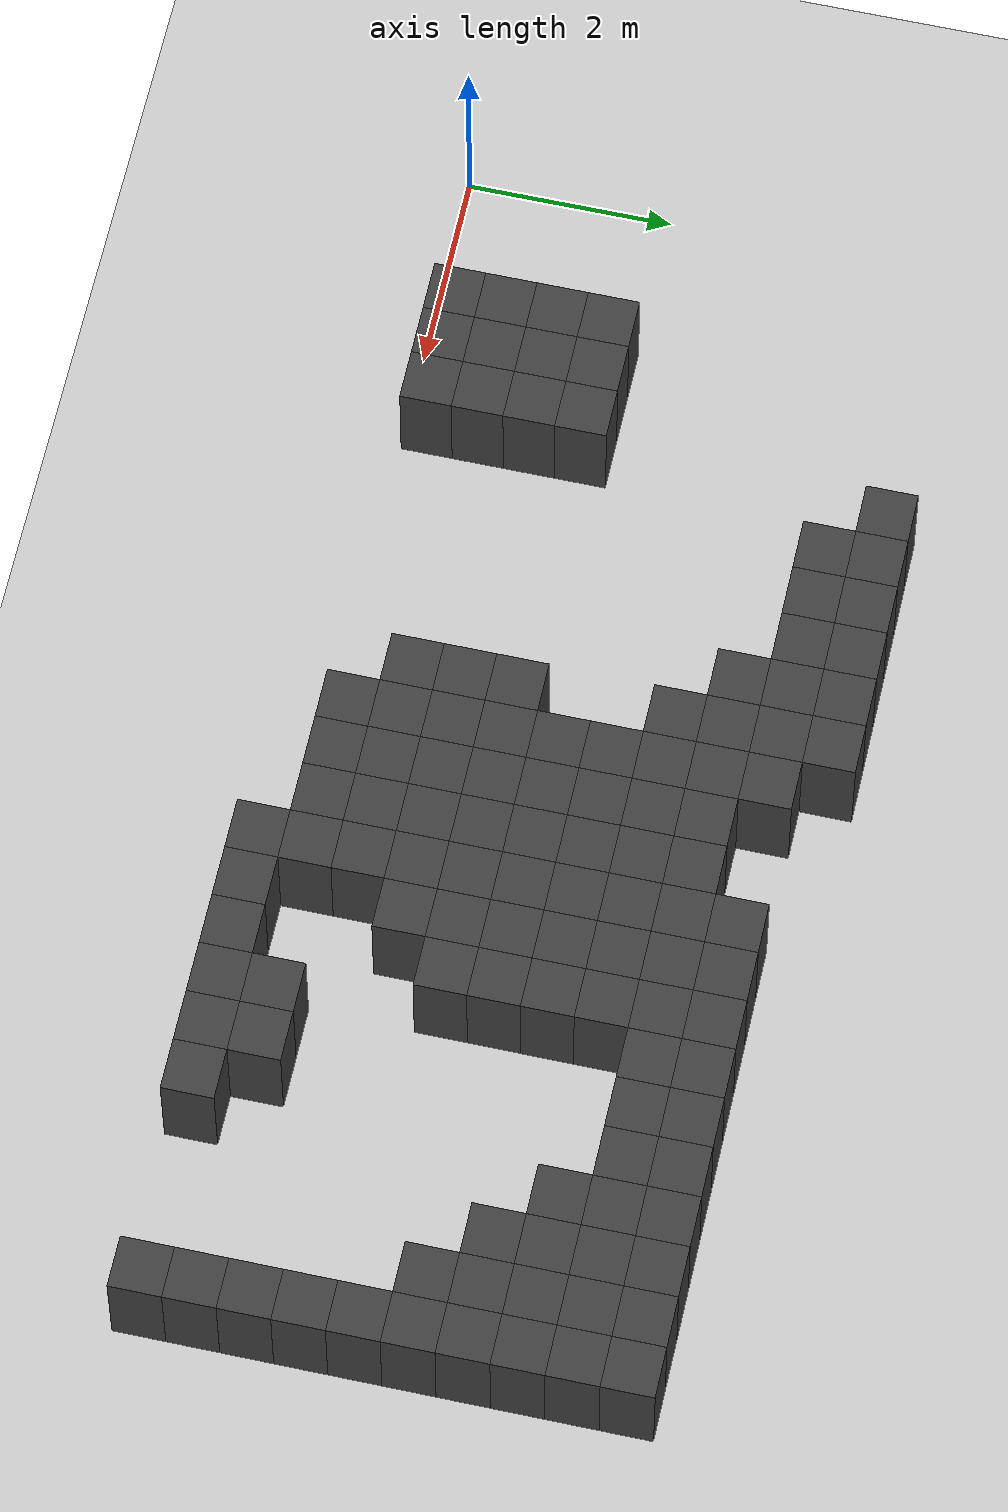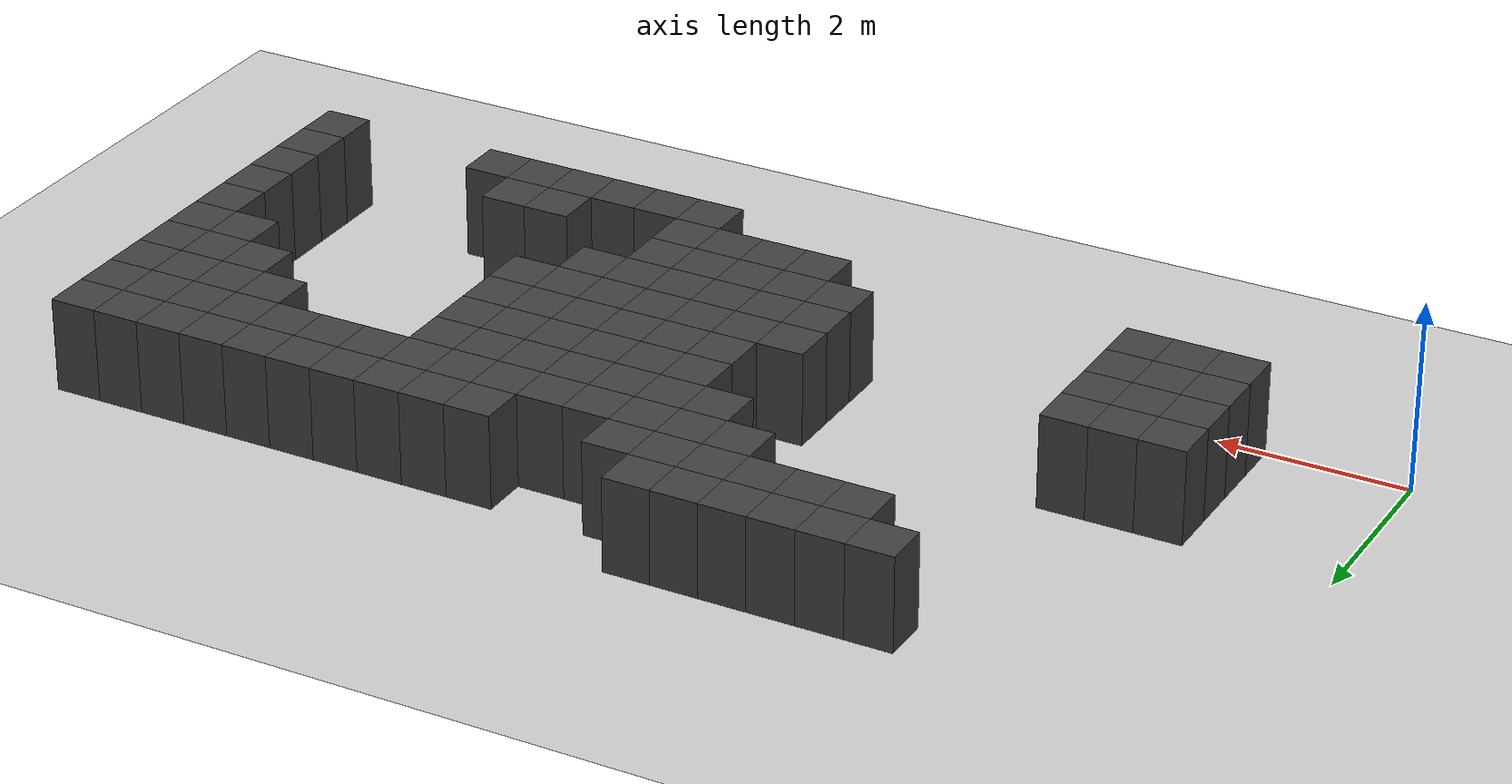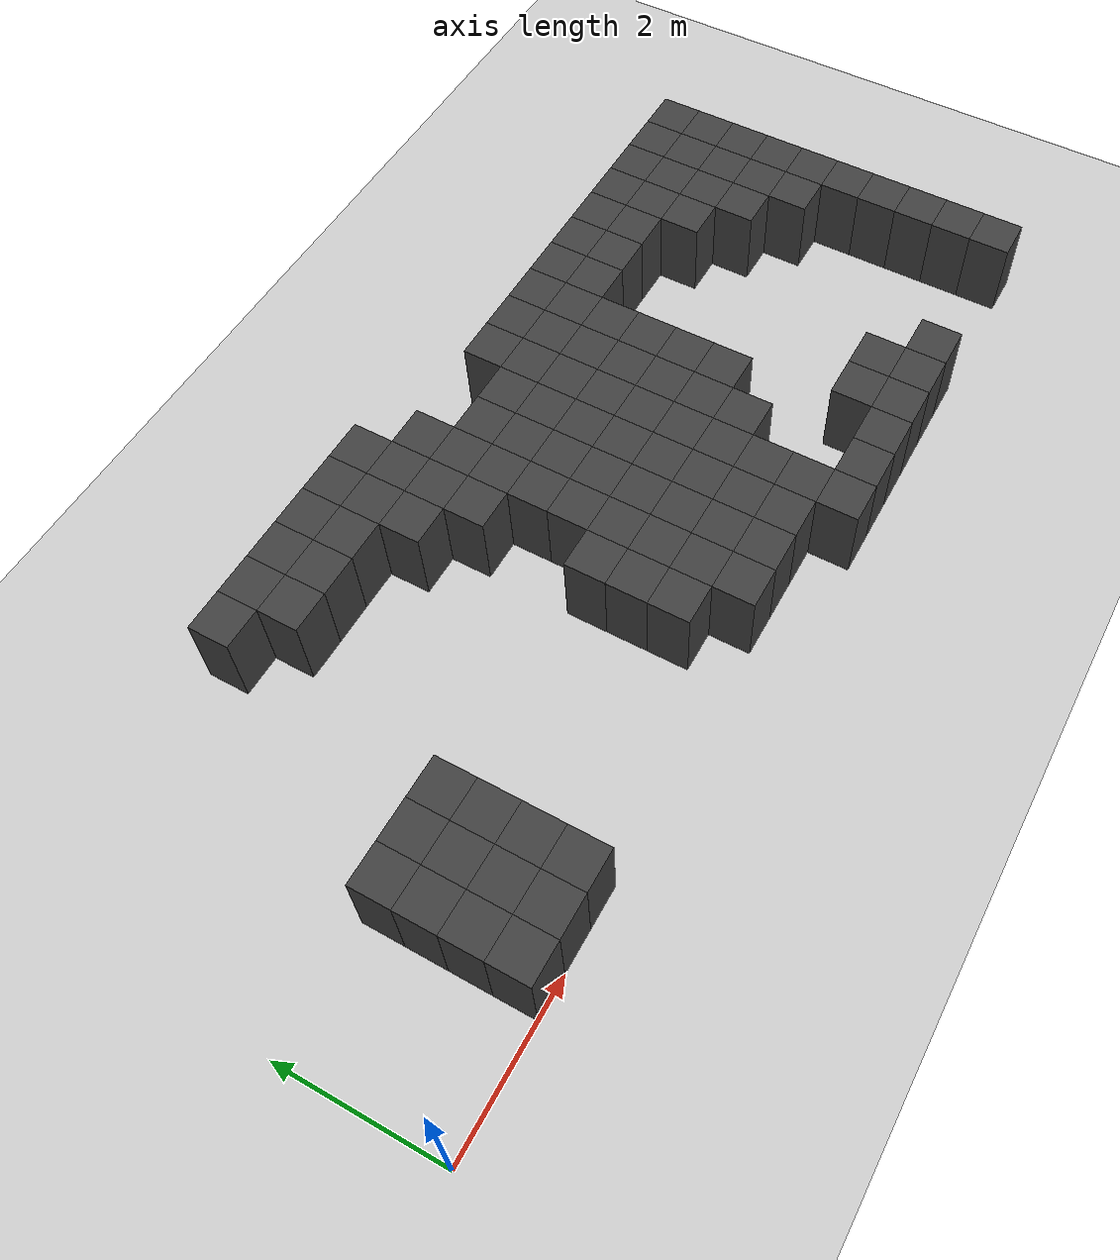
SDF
<sdf version="1.7">
 <world name="map_9405">
  <model name="ground_plane">
   <static>true</static>
   <link name="link">
    <collision name="collision">
     <geometry><plane><normal>0 0 1</normal><size>200 200</size></plane></geometry>
    </collision>
    <visual name="visual">
     <geometry><plane><normal>0 0 1</normal><size>200 200</size></plane></geometry>
     <material><ambient>0.8 0.8 0.8 1</ambient><diffuse>0.8 0.8 0.8 1</diffuse></material>
    </visual>
   </link>
  </model>
  <model name="maze_environment">
   <static>true</static>
   <link name="wall_226">
    <pose>3.250 4.750 0.500 0 0 0</pose>
    <collision name="col"><geometry><box><size>0.5 0.5 1.0</size></box></geometry></collision>
    <visual name="vis">
     <geometry><box><size>0.5 0.5 1.0</size></box></geometry>
     <material><ambient>0.15 0.15 0.15 1</ambient><diffuse>0.25 0.25 0.25 1</diffuse></material>
    </visual>
   </link>
   <link name="wall_227">
    <pose>3.750 4.750 0.500 0 0 0</pose>
    <collision name="col"><geometry><box><size>0.5 0.5 1.0</size></box></geometry></collision>
    <visual name="vis">
     <geometry><box><size>0.5 0.5 1.0</size></box></geometry>
     <material><ambient>0.15 0.15 0.15 1</ambient><diffuse>0.25 0.25 0.25 1</diffuse></material>
    </visual>
   </link>
   <link name="wall_228">
    <pose>4.250 4.750 0.500 0 0 0</pose>
    <collision name="col"><geometry><box><size>0.5 0.5 1.0</size></box></geometry></collision>
    <visual name="vis">
     <geometry><box><size>0.5 0.5 1.0</size></box></geometry>
     <material><ambient>0.15 0.15 0.15 1</ambient><diffuse>0.25 0.25 0.25 1</diffuse></material>
    </visual>
   </link>
   <link name="wall_229">
    <pose>4.750 4.750 0.500 0 0 0</pose>
    <collision name="col"><geometry><box><size>0.5 0.5 1.0</size></box></geometry></collision>
    <visual name="vis">
     <geometry><box><size>0.5 0.5 1.0</size></box></geometry>
     <material><ambient>0.15 0.15 0.15 1</ambient><diffuse>0.25 0.25 0.25 1</diffuse></material>
    </visual>
   </link>
   <link name="wall_230">
    <pose>5.250 4.750 0.500 0 0 0</pose>
    <collision name="col"><geometry><box><size>0.5 0.5 1.0</size></box></geometry></collision>
    <visual name="vis">
     <geometry><box><size>0.5 0.5 1.0</size></box></geometry>
     <material><ambient>0.15 0.15 0.15 1</ambient><diffuse>0.25 0.25 0.25 1</diffuse></material>
    </visual>
   </link>
   <link name="wall_231">
    <pose>5.750 4.750 0.500 0 0 0</pose>
    <collision name="col"><geometry><box><size>0.5 0.5 1.0</size></box></geometry></collision>
    <visual name="vis">
     <geometry><box><size>0.5 0.5 1.0</size></box></geometry>
     <material><ambient>0.15 0.15 0.15 1</ambient><diffuse>0.25 0.25 0.25 1</diffuse></material>
    </visual>
   </link>
   <link name="wall_242">
    <pose>3.750 4.250 0.500 0 0 0</pose>
    <collision name="col"><geometry><box><size>0.5 0.5 1.0</size></box></geometry></collision>
    <visual name="vis">
     <geometry><box><size>0.5 0.5 1.0</size></box></geometry>
     <material><ambient>0.15 0.15 0.15 1</ambient><diffuse>0.25 0.25 0.25 1</diffuse></material>
    </visual>
   </link>
   <link name="wall_243">
    <pose>4.250 4.250 0.500 0 0 0</pose>
    <collision name="col"><geometry><box><size>0.5 0.5 1.0</size></box></geometry></collision>
    <visual name="vis">
     <geometry><box><size>0.5 0.5 1.0</size></box></geometry>
     <material><ambient>0.15 0.15 0.15 1</ambient><diffuse>0.25 0.25 0.25 1</diffuse></material>
    </visual>
   </link>
   <link name="wall_244">
    <pose>4.750 4.250 0.500 0 0 0</pose>
    <collision name="col"><geometry><box><size>0.5 0.5 1.0</size></box></geometry></collision>
    <visual name="vis">
     <geometry><box><size>0.5 0.5 1.0</size></box></geometry>
     <material><ambient>0.15 0.15 0.15 1</ambient><diffuse>0.25 0.25 0.25 1</diffuse></material>
    </visual>
   </link>
   <link name="wall_245">
    <pose>5.250 4.250 0.500 0 0 0</pose>
    <collision name="col"><geometry><box><size>0.5 0.5 1.0</size></box></geometry></collision>
    <visual name="vis">
     <geometry><box><size>0.5 0.5 1.0</size></box></geometry>
     <material><ambient>0.15 0.15 0.15 1</ambient><diffuse>0.25 0.25 0.25 1</diffuse></material>
    </visual>
   </link>
   <link name="wall_246">
    <pose>5.750 4.250 0.500 0 0 0</pose>
    <collision name="col"><geometry><box><size>0.5 0.5 1.0</size></box></geometry></collision>
    <visual name="vis">
     <geometry><box><size>0.5 0.5 1.0</size></box></geometry>
     <material><ambient>0.15 0.15 0.15 1</ambient><diffuse>0.25 0.25 0.25 1</diffuse></material>
    </visual>
   </link>
   <link name="wall_247">
    <pose>6.250 4.250 0.500 0 0 0</pose>
    <collision name="col"><geometry><box><size>0.5 0.5 1.0</size></box></geometry></collision>
    <visual name="vis">
     <geometry><box><size>0.5 0.5 1.0</size></box></geometry>
     <material><ambient>0.15 0.15 0.15 1</ambient><diffuse>0.25 0.25 0.25 1</diffuse></material>
    </visual>
   </link>
   <link name="wall_248">
    <pose>7.750 4.250 0.500 0 0 0</pose>
    <collision name="col"><geometry><box><size>0.5 0.5 1.0</size></box></geometry></collision>
    <visual name="vis">
     <geometry><box><size>0.5 0.5 1.0</size></box></geometry>
     <material><ambient>0.15 0.15 0.15 1</ambient><diffuse>0.25 0.25 0.25 1</diffuse></material>
    </visual>
   </link>
   <link name="wall_249">
    <pose>8.250 4.250 0.500 0 0 0</pose>
    <collision name="col"><geometry><box><size>0.5 0.5 1.0</size></box></geometry></collision>
    <visual name="vis">
     <geometry><box><size>0.5 0.5 1.0</size></box></geometry>
     <material><ambient>0.15 0.15 0.15 1</ambient><diffuse>0.25 0.25 0.25 1</diffuse></material>
    </visual>
   </link>
   <link name="wall_250">
    <pose>8.750 4.250 0.500 0 0 0</pose>
    <collision name="col"><geometry><box><size>0.5 0.5 1.0</size></box></geometry></collision>
    <visual name="vis">
     <geometry><box><size>0.5 0.5 1.0</size></box></geometry>
     <material><ambient>0.15 0.15 0.15 1</ambient><diffuse>0.25 0.25 0.25 1</diffuse></material>
    </visual>
   </link>
   <link name="wall_251">
    <pose>9.250 4.250 0.500 0 0 0</pose>
    <collision name="col"><geometry><box><size>0.5 0.5 1.0</size></box></geometry></collision>
    <visual name="vis">
     <geometry><box><size>0.5 0.5 1.0</size></box></geometry>
     <material><ambient>0.15 0.15 0.15 1</ambient><diffuse>0.25 0.25 0.25 1</diffuse></material>
    </visual>
   </link>
   <link name="wall_252">
    <pose>9.750 4.250 0.500 0 0 0</pose>
    <collision name="col"><geometry><box><size>0.5 0.5 1.0</size></box></geometry></collision>
    <visual name="vis">
     <geometry><box><size>0.5 0.5 1.0</size></box></geometry>
     <material><ambient>0.15 0.15 0.15 1</ambient><diffuse>0.25 0.25 0.25 1</diffuse></material>
    </visual>
   </link>
   <link name="wall_253">
    <pose>10.250 4.250 0.500 0 0 0</pose>
    <collision name="col"><geometry><box><size>0.5 0.5 1.0</size></box></geometry></collision>
    <visual name="vis">
     <geometry><box><size>0.5 0.5 1.0</size></box></geometry>
     <material><ambient>0.15 0.15 0.15 1</ambient><diffuse>0.25 0.25 0.25 1</diffuse></material>
    </visual>
   </link>
   <link name="wall_254">
    <pose>10.750 4.250 0.500 0 0 0</pose>
    <collision name="col"><geometry><box><size>0.5 0.5 1.0</size></box></geometry></collision>
    <visual name="vis">
     <geometry><box><size>0.5 0.5 1.0</size></box></geometry>
     <material><ambient>0.15 0.15 0.15 1</ambient><diffuse>0.25 0.25 0.25 1</diffuse></material>
    </visual>
   </link>
   <link name="wall_255">
    <pose>11.250 4.250 0.500 0 0 0</pose>
    <collision name="col"><geometry><box><size>0.5 0.5 1.0</size></box></geometry></collision>
    <visual name="vis">
     <geometry><box><size>0.5 0.5 1.0</size></box></geometry>
     <material><ambient>0.15 0.15 0.15 1</ambient><diffuse>0.25 0.25 0.25 1</diffuse></material>
    </visual>
   </link>
   <link name="wall_256">
    <pose>11.750 4.250 0.500 0 0 0</pose>
    <collision name="col"><geometry><box><size>0.5 0.5 1.0</size></box></geometry></collision>
    <visual name="vis">
     <geometry><box><size>0.5 0.5 1.0</size></box></geometry>
     <material><ambient>0.15 0.15 0.15 1</ambient><diffuse>0.25 0.25 0.25 1</diffuse></material>
    </visual>
   </link>
   <link name="wall_257">
    <pose>12.250 4.250 0.500 0 0 0</pose>
    <collision name="col"><geometry><box><size>0.5 0.5 1.0</size></box></geometry></collision>
    <visual name="vis">
     <geometry><box><size>0.5 0.5 1.0</size></box></geometry>
     <material><ambient>0.15 0.15 0.15 1</ambient><diffuse>0.25 0.25 0.25 1</diffuse></material>
    </visual>
   </link>
   <link name="wall_265">
    <pose>5.250 3.750 0.500 0 0 0</pose>
    <collision name="col"><geometry><box><size>0.5 0.5 1.0</size></box></geometry></collision>
    <visual name="vis">
     <geometry><box><size>0.5 0.5 1.0</size></box></geometry>
     <material><ambient>0.15 0.15 0.15 1</ambient><diffuse>0.25 0.25 0.25 1</diffuse></material>
    </visual>
   </link>
   <link name="wall_266">
    <pose>5.750 3.750 0.500 0 0 0</pose>
    <collision name="col"><geometry><box><size>0.5 0.5 1.0</size></box></geometry></collision>
    <visual name="vis">
     <geometry><box><size>0.5 0.5 1.0</size></box></geometry>
     <material><ambient>0.15 0.15 0.15 1</ambient><diffuse>0.25 0.25 0.25 1</diffuse></material>
    </visual>
   </link>
   <link name="wall_267">
    <pose>6.250 3.750 0.500 0 0 0</pose>
    <collision name="col"><geometry><box><size>0.5 0.5 1.0</size></box></geometry></collision>
    <visual name="vis">
     <geometry><box><size>0.5 0.5 1.0</size></box></geometry>
     <material><ambient>0.15 0.15 0.15 1</ambient><diffuse>0.25 0.25 0.25 1</diffuse></material>
    </visual>
   </link>
   <link name="wall_268">
    <pose>6.750 3.750 0.500 0 0 0</pose>
    <collision name="col"><geometry><box><size>0.5 0.5 1.0</size></box></geometry></collision>
    <visual name="vis">
     <geometry><box><size>0.5 0.5 1.0</size></box></geometry>
     <material><ambient>0.15 0.15 0.15 1</ambient><diffuse>0.25 0.25 0.25 1</diffuse></material>
    </visual>
   </link>
   <link name="wall_269">
    <pose>7.250 3.750 0.500 0 0 0</pose>
    <collision name="col"><geometry><box><size>0.5 0.5 1.0</size></box></geometry></collision>
    <visual name="vis">
     <geometry><box><size>0.5 0.5 1.0</size></box></geometry>
     <material><ambient>0.15 0.15 0.15 1</ambient><diffuse>0.25 0.25 0.25 1</diffuse></material>
    </visual>
   </link>
   <link name="wall_270">
    <pose>7.750 3.750 0.500 0 0 0</pose>
    <collision name="col"><geometry><box><size>0.5 0.5 1.0</size></box></geometry></collision>
    <visual name="vis">
     <geometry><box><size>0.5 0.5 1.0</size></box></geometry>
     <material><ambient>0.15 0.15 0.15 1</ambient><diffuse>0.25 0.25 0.25 1</diffuse></material>
    </visual>
   </link>
   <link name="wall_271">
    <pose>8.250 3.750 0.500 0 0 0</pose>
    <collision name="col"><geometry><box><size>0.5 0.5 1.0</size></box></geometry></collision>
    <visual name="vis">
     <geometry><box><size>0.5 0.5 1.0</size></box></geometry>
     <material><ambient>0.15 0.15 0.15 1</ambient><diffuse>0.25 0.25 0.25 1</diffuse></material>
    </visual>
   </link>
   <link name="wall_272">
    <pose>8.750 3.750 0.500 0 0 0</pose>
    <collision name="col"><geometry><box><size>0.5 0.5 1.0</size></box></geometry></collision>
    <visual name="vis">
     <geometry><box><size>0.5 0.5 1.0</size></box></geometry>
     <material><ambient>0.15 0.15 0.15 1</ambient><diffuse>0.25 0.25 0.25 1</diffuse></material>
    </visual>
   </link>
   <link name="wall_273">
    <pose>9.250 3.750 0.500 0 0 0</pose>
    <collision name="col"><geometry><box><size>0.5 0.5 1.0</size></box></geometry></collision>
    <visual name="vis">
     <geometry><box><size>0.5 0.5 1.0</size></box></geometry>
     <material><ambient>0.15 0.15 0.15 1</ambient><diffuse>0.25 0.25 0.25 1</diffuse></material>
    </visual>
   </link>
   <link name="wall_274">
    <pose>9.750 3.750 0.500 0 0 0</pose>
    <collision name="col"><geometry><box><size>0.5 0.5 1.0</size></box></geometry></collision>
    <visual name="vis">
     <geometry><box><size>0.5 0.5 1.0</size></box></geometry>
     <material><ambient>0.15 0.15 0.15 1</ambient><diffuse>0.25 0.25 0.25 1</diffuse></material>
    </visual>
   </link>
   <link name="wall_275">
    <pose>10.250 3.750 0.500 0 0 0</pose>
    <collision name="col"><geometry><box><size>0.5 0.5 1.0</size></box></geometry></collision>
    <visual name="vis">
     <geometry><box><size>0.5 0.5 1.0</size></box></geometry>
     <material><ambient>0.15 0.15 0.15 1</ambient><diffuse>0.25 0.25 0.25 1</diffuse></material>
    </visual>
   </link>
   <link name="wall_276">
    <pose>10.750 3.750 0.500 0 0 0</pose>
    <collision name="col"><geometry><box><size>0.5 0.5 1.0</size></box></geometry></collision>
    <visual name="vis">
     <geometry><box><size>0.5 0.5 1.0</size></box></geometry>
     <material><ambient>0.15 0.15 0.15 1</ambient><diffuse>0.25 0.25 0.25 1</diffuse></material>
    </visual>
   </link>
   <link name="wall_277">
    <pose>11.250 3.750 0.500 0 0 0</pose>
    <collision name="col"><geometry><box><size>0.5 0.5 1.0</size></box></geometry></collision>
    <visual name="vis">
     <geometry><box><size>0.5 0.5 1.0</size></box></geometry>
     <material><ambient>0.15 0.15 0.15 1</ambient><diffuse>0.25 0.25 0.25 1</diffuse></material>
    </visual>
   </link>
   <link name="wall_278">
    <pose>11.750 3.750 0.500 0 0 0</pose>
    <collision name="col"><geometry><box><size>0.5 0.5 1.0</size></box></geometry></collision>
    <visual name="vis">
     <geometry><box><size>0.5 0.5 1.0</size></box></geometry>
     <material><ambient>0.15 0.15 0.15 1</ambient><diffuse>0.25 0.25 0.25 1</diffuse></material>
    </visual>
   </link>
   <link name="wall_279">
    <pose>12.250 3.750 0.500 0 0 0</pose>
    <collision name="col"><geometry><box><size>0.5 0.5 1.0</size></box></geometry></collision>
    <visual name="vis">
     <geometry><box><size>0.5 0.5 1.0</size></box></geometry>
     <material><ambient>0.15 0.15 0.15 1</ambient><diffuse>0.25 0.25 0.25 1</diffuse></material>
    </visual>
   </link>
   <link name="wall_291">
    <pose>5.750 3.250 0.500 0 0 0</pose>
    <collision name="col"><geometry><box><size>0.5 0.5 1.0</size></box></geometry></collision>
    <visual name="vis">
     <geometry><box><size>0.5 0.5 1.0</size></box></geometry>
     <material><ambient>0.15 0.15 0.15 1</ambient><diffuse>0.25 0.25 0.25 1</diffuse></material>
    </visual>
   </link>
   <link name="wall_292">
    <pose>6.250 3.250 0.500 0 0 0</pose>
    <collision name="col"><geometry><box><size>0.5 0.5 1.0</size></box></geometry></collision>
    <visual name="vis">
     <geometry><box><size>0.5 0.5 1.0</size></box></geometry>
     <material><ambient>0.15 0.15 0.15 1</ambient><diffuse>0.25 0.25 0.25 1</diffuse></material>
    </visual>
   </link>
   <link name="wall_293">
    <pose>6.750 3.250 0.500 0 0 0</pose>
    <collision name="col"><geometry><box><size>0.5 0.5 1.0</size></box></geometry></collision>
    <visual name="vis">
     <geometry><box><size>0.5 0.5 1.0</size></box></geometry>
     <material><ambient>0.15 0.15 0.15 1</ambient><diffuse>0.25 0.25 0.25 1</diffuse></material>
    </visual>
   </link>
   <link name="wall_294">
    <pose>7.250 3.250 0.500 0 0 0</pose>
    <collision name="col"><geometry><box><size>0.5 0.5 1.0</size></box></geometry></collision>
    <visual name="vis">
     <geometry><box><size>0.5 0.5 1.0</size></box></geometry>
     <material><ambient>0.15 0.15 0.15 1</ambient><diffuse>0.25 0.25 0.25 1</diffuse></material>
    </visual>
   </link>
   <link name="wall_295">
    <pose>7.750 3.250 0.500 0 0 0</pose>
    <collision name="col"><geometry><box><size>0.5 0.5 1.0</size></box></geometry></collision>
    <visual name="vis">
     <geometry><box><size>0.5 0.5 1.0</size></box></geometry>
     <material><ambient>0.15 0.15 0.15 1</ambient><diffuse>0.25 0.25 0.25 1</diffuse></material>
    </visual>
   </link>
   <link name="wall_296">
    <pose>8.250 3.250 0.500 0 0 0</pose>
    <collision name="col"><geometry><box><size>0.5 0.5 1.0</size></box></geometry></collision>
    <visual name="vis">
     <geometry><box><size>0.5 0.5 1.0</size></box></geometry>
     <material><ambient>0.15 0.15 0.15 1</ambient><diffuse>0.25 0.25 0.25 1</diffuse></material>
    </visual>
   </link>
   <link name="wall_297">
    <pose>8.750 3.250 0.500 0 0 0</pose>
    <collision name="col"><geometry><box><size>0.5 0.5 1.0</size></box></geometry></collision>
    <visual name="vis">
     <geometry><box><size>0.5 0.5 1.0</size></box></geometry>
     <material><ambient>0.15 0.15 0.15 1</ambient><diffuse>0.25 0.25 0.25 1</diffuse></material>
    </visual>
   </link>
   <link name="wall_298">
    <pose>10.750 3.250 0.500 0 0 0</pose>
    <collision name="col"><geometry><box><size>0.5 0.5 1.0</size></box></geometry></collision>
    <visual name="vis">
     <geometry><box><size>0.5 0.5 1.0</size></box></geometry>
     <material><ambient>0.15 0.15 0.15 1</ambient><diffuse>0.25 0.25 0.25 1</diffuse></material>
    </visual>
   </link>
   <link name="wall_299">
    <pose>11.250 3.250 0.500 0 0 0</pose>
    <collision name="col"><geometry><box><size>0.5 0.5 1.0</size></box></geometry></collision>
    <visual name="vis">
     <geometry><box><size>0.5 0.5 1.0</size></box></geometry>
     <material><ambient>0.15 0.15 0.15 1</ambient><diffuse>0.25 0.25 0.25 1</diffuse></material>
    </visual>
   </link>
   <link name="wall_300">
    <pose>11.750 3.250 0.500 0 0 0</pose>
    <collision name="col"><geometry><box><size>0.5 0.5 1.0</size></box></geometry></collision>
    <visual name="vis">
     <geometry><box><size>0.5 0.5 1.0</size></box></geometry>
     <material><ambient>0.15 0.15 0.15 1</ambient><diffuse>0.25 0.25 0.25 1</diffuse></material>
    </visual>
   </link>
   <link name="wall_301">
    <pose>12.250 3.250 0.500 0 0 0</pose>
    <collision name="col"><geometry><box><size>0.5 0.5 1.0</size></box></geometry></collision>
    <visual name="vis">
     <geometry><box><size>0.5 0.5 1.0</size></box></geometry>
     <material><ambient>0.15 0.15 0.15 1</ambient><diffuse>0.25 0.25 0.25 1</diffuse></material>
    </visual>
   </link>
   <link name="wall_314">
    <pose>6.250 2.750 0.500 0 0 0</pose>
    <collision name="col"><geometry><box><size>0.5 0.5 1.0</size></box></geometry></collision>
    <visual name="vis">
     <geometry><box><size>0.5 0.5 1.0</size></box></geometry>
     <material><ambient>0.15 0.15 0.15 1</ambient><diffuse>0.25 0.25 0.25 1</diffuse></material>
    </visual>
   </link>
   <link name="wall_315">
    <pose>6.750 2.750 0.500 0 0 0</pose>
    <collision name="col"><geometry><box><size>0.5 0.5 1.0</size></box></geometry></collision>
    <visual name="vis">
     <geometry><box><size>0.5 0.5 1.0</size></box></geometry>
     <material><ambient>0.15 0.15 0.15 1</ambient><diffuse>0.25 0.25 0.25 1</diffuse></material>
    </visual>
   </link>
   <link name="wall_316">
    <pose>7.250 2.750 0.500 0 0 0</pose>
    <collision name="col"><geometry><box><size>0.5 0.5 1.0</size></box></geometry></collision>
    <visual name="vis">
     <geometry><box><size>0.5 0.5 1.0</size></box></geometry>
     <material><ambient>0.15 0.15 0.15 1</ambient><diffuse>0.25 0.25 0.25 1</diffuse></material>
    </visual>
   </link>
   <link name="wall_317">
    <pose>7.750 2.750 0.500 0 0 0</pose>
    <collision name="col"><geometry><box><size>0.5 0.5 1.0</size></box></geometry></collision>
    <visual name="vis">
     <geometry><box><size>0.5 0.5 1.0</size></box></geometry>
     <material><ambient>0.15 0.15 0.15 1</ambient><diffuse>0.25 0.25 0.25 1</diffuse></material>
    </visual>
   </link>
   <link name="wall_318">
    <pose>8.250 2.750 0.500 0 0 0</pose>
    <collision name="col"><geometry><box><size>0.5 0.5 1.0</size></box></geometry></collision>
    <visual name="vis">
     <geometry><box><size>0.5 0.5 1.0</size></box></geometry>
     <material><ambient>0.15 0.15 0.15 1</ambient><diffuse>0.25 0.25 0.25 1</diffuse></material>
    </visual>
   </link>
   <link name="wall_319">
    <pose>8.750 2.750 0.500 0 0 0</pose>
    <collision name="col"><geometry><box><size>0.5 0.5 1.0</size></box></geometry></collision>
    <visual name="vis">
     <geometry><box><size>0.5 0.5 1.0</size></box></geometry>
     <material><ambient>0.15 0.15 0.15 1</ambient><diffuse>0.25 0.25 0.25 1</diffuse></material>
    </visual>
   </link>
   <link name="wall_320">
    <pose>11.250 2.750 0.500 0 0 0</pose>
    <collision name="col"><geometry><box><size>0.5 0.5 1.0</size></box></geometry></collision>
    <visual name="vis">
     <geometry><box><size>0.5 0.5 1.0</size></box></geometry>
     <material><ambient>0.15 0.15 0.15 1</ambient><diffuse>0.25 0.25 0.25 1</diffuse></material>
    </visual>
   </link>
   <link name="wall_321">
    <pose>11.750 2.750 0.500 0 0 0</pose>
    <collision name="col"><geometry><box><size>0.5 0.5 1.0</size></box></geometry></collision>
    <visual name="vis">
     <geometry><box><size>0.5 0.5 1.0</size></box></geometry>
     <material><ambient>0.15 0.15 0.15 1</ambient><diffuse>0.25 0.25 0.25 1</diffuse></material>
    </visual>
   </link>
   <link name="wall_322">
    <pose>12.250 2.750 0.500 0 0 0</pose>
    <collision name="col"><geometry><box><size>0.5 0.5 1.0</size></box></geometry></collision>
    <visual name="vis">
     <geometry><box><size>0.5 0.5 1.0</size></box></geometry>
     <material><ambient>0.15 0.15 0.15 1</ambient><diffuse>0.25 0.25 0.25 1</diffuse></material>
    </visual>
   </link>
   <link name="wall_335">
    <pose>6.250 2.250 0.500 0 0 0</pose>
    <collision name="col"><geometry><box><size>0.5 0.5 1.0</size></box></geometry></collision>
    <visual name="vis">
     <geometry><box><size>0.5 0.5 1.0</size></box></geometry>
     <material><ambient>0.15 0.15 0.15 1</ambient><diffuse>0.25 0.25 0.25 1</diffuse></material>
    </visual>
   </link>
   <link name="wall_336">
    <pose>6.750 2.250 0.500 0 0 0</pose>
    <collision name="col"><geometry><box><size>0.5 0.5 1.0</size></box></geometry></collision>
    <visual name="vis">
     <geometry><box><size>0.5 0.5 1.0</size></box></geometry>
     <material><ambient>0.15 0.15 0.15 1</ambient><diffuse>0.25 0.25 0.25 1</diffuse></material>
    </visual>
   </link>
   <link name="wall_337">
    <pose>7.250 2.250 0.500 0 0 0</pose>
    <collision name="col"><geometry><box><size>0.5 0.5 1.0</size></box></geometry></collision>
    <visual name="vis">
     <geometry><box><size>0.5 0.5 1.0</size></box></geometry>
     <material><ambient>0.15 0.15 0.15 1</ambient><diffuse>0.25 0.25 0.25 1</diffuse></material>
    </visual>
   </link>
   <link name="wall_338">
    <pose>7.750 2.250 0.500 0 0 0</pose>
    <collision name="col"><geometry><box><size>0.5 0.5 1.0</size></box></geometry></collision>
    <visual name="vis">
     <geometry><box><size>0.5 0.5 1.0</size></box></geometry>
     <material><ambient>0.15 0.15 0.15 1</ambient><diffuse>0.25 0.25 0.25 1</diffuse></material>
    </visual>
   </link>
   <link name="wall_339">
    <pose>8.250 2.250 0.500 0 0 0</pose>
    <collision name="col"><geometry><box><size>0.5 0.5 1.0</size></box></geometry></collision>
    <visual name="vis">
     <geometry><box><size>0.5 0.5 1.0</size></box></geometry>
     <material><ambient>0.15 0.15 0.15 1</ambient><diffuse>0.25 0.25 0.25 1</diffuse></material>
    </visual>
   </link>
   <link name="wall_340">
    <pose>8.750 2.250 0.500 0 0 0</pose>
    <collision name="col"><geometry><box><size>0.5 0.5 1.0</size></box></geometry></collision>
    <visual name="vis">
     <geometry><box><size>0.5 0.5 1.0</size></box></geometry>
     <material><ambient>0.15 0.15 0.15 1</ambient><diffuse>0.25 0.25 0.25 1</diffuse></material>
    </visual>
   </link>
   <link name="wall_341">
    <pose>11.750 2.250 0.500 0 0 0</pose>
    <collision name="col"><geometry><box><size>0.5 0.5 1.0</size></box></geometry></collision>
    <visual name="vis">
     <geometry><box><size>0.5 0.5 1.0</size></box></geometry>
     <material><ambient>0.15 0.15 0.15 1</ambient><diffuse>0.25 0.25 0.25 1</diffuse></material>
    </visual>
   </link>
   <link name="wall_342">
    <pose>12.250 2.250 0.500 0 0 0</pose>
    <collision name="col"><geometry><box><size>0.5 0.5 1.0</size></box></geometry></collision>
    <visual name="vis">
     <geometry><box><size>0.5 0.5 1.0</size></box></geometry>
     <material><ambient>0.15 0.15 0.15 1</ambient><diffuse>0.25 0.25 0.25 1</diffuse></material>
    </visual>
   </link>
   <link name="wall_353">
    <pose>1.750 1.750 0.500 0 0 0</pose>
    <collision name="col"><geometry><box><size>0.5 0.5 1.0</size></box></geometry></collision>
    <visual name="vis">
     <geometry><box><size>0.5 0.5 1.0</size></box></geometry>
     <material><ambient>0.15 0.15 0.15 1</ambient><diffuse>0.25 0.25 0.25 1</diffuse></material>
    </visual>
   </link>
   <link name="wall_354">
    <pose>2.250 1.750 0.500 0 0 0</pose>
    <collision name="col"><geometry><box><size>0.5 0.5 1.0</size></box></geometry></collision>
    <visual name="vis">
     <geometry><box><size>0.5 0.5 1.0</size></box></geometry>
     <material><ambient>0.15 0.15 0.15 1</ambient><diffuse>0.25 0.25 0.25 1</diffuse></material>
    </visual>
   </link>
   <link name="wall_355">
    <pose>2.750 1.750 0.500 0 0 0</pose>
    <collision name="col"><geometry><box><size>0.5 0.5 1.0</size></box></geometry></collision>
    <visual name="vis">
     <geometry><box><size>0.5 0.5 1.0</size></box></geometry>
     <material><ambient>0.15 0.15 0.15 1</ambient><diffuse>0.25 0.25 0.25 1</diffuse></material>
    </visual>
   </link>
   <link name="wall_356">
    <pose>5.750 1.750 0.500 0 0 0</pose>
    <collision name="col"><geometry><box><size>0.5 0.5 1.0</size></box></geometry></collision>
    <visual name="vis">
     <geometry><box><size>0.5 0.5 1.0</size></box></geometry>
     <material><ambient>0.15 0.15 0.15 1</ambient><diffuse>0.25 0.25 0.25 1</diffuse></material>
    </visual>
   </link>
   <link name="wall_357">
    <pose>6.250 1.750 0.500 0 0 0</pose>
    <collision name="col"><geometry><box><size>0.5 0.5 1.0</size></box></geometry></collision>
    <visual name="vis">
     <geometry><box><size>0.5 0.5 1.0</size></box></geometry>
     <material><ambient>0.15 0.15 0.15 1</ambient><diffuse>0.25 0.25 0.25 1</diffuse></material>
    </visual>
   </link>
   <link name="wall_358">
    <pose>6.750 1.750 0.500 0 0 0</pose>
    <collision name="col"><geometry><box><size>0.5 0.5 1.0</size></box></geometry></collision>
    <visual name="vis">
     <geometry><box><size>0.5 0.5 1.0</size></box></geometry>
     <material><ambient>0.15 0.15 0.15 1</ambient><diffuse>0.25 0.25 0.25 1</diffuse></material>
    </visual>
   </link>
   <link name="wall_359">
    <pose>7.250 1.750 0.500 0 0 0</pose>
    <collision name="col"><geometry><box><size>0.5 0.5 1.0</size></box></geometry></collision>
    <visual name="vis">
     <geometry><box><size>0.5 0.5 1.0</size></box></geometry>
     <material><ambient>0.15 0.15 0.15 1</ambient><diffuse>0.25 0.25 0.25 1</diffuse></material>
    </visual>
   </link>
   <link name="wall_360">
    <pose>7.750 1.750 0.500 0 0 0</pose>
    <collision name="col"><geometry><box><size>0.5 0.5 1.0</size></box></geometry></collision>
    <visual name="vis">
     <geometry><box><size>0.5 0.5 1.0</size></box></geometry>
     <material><ambient>0.15 0.15 0.15 1</ambient><diffuse>0.25 0.25 0.25 1</diffuse></material>
    </visual>
   </link>
   <link name="wall_361">
    <pose>8.250 1.750 0.500 0 0 0</pose>
    <collision name="col"><geometry><box><size>0.5 0.5 1.0</size></box></geometry></collision>
    <visual name="vis">
     <geometry><box><size>0.5 0.5 1.0</size></box></geometry>
     <material><ambient>0.15 0.15 0.15 1</ambient><diffuse>0.25 0.25 0.25 1</diffuse></material>
    </visual>
   </link>
   <link name="wall_362">
    <pose>8.750 1.750 0.500 0 0 0</pose>
    <collision name="col"><geometry><box><size>0.5 0.5 1.0</size></box></geometry></collision>
    <visual name="vis">
     <geometry><box><size>0.5 0.5 1.0</size></box></geometry>
     <material><ambient>0.15 0.15 0.15 1</ambient><diffuse>0.25 0.25 0.25 1</diffuse></material>
    </visual>
   </link>
   <link name="wall_363">
    <pose>12.250 1.750 0.500 0 0 0</pose>
    <collision name="col"><geometry><box><size>0.5 0.5 1.0</size></box></geometry></collision>
    <visual name="vis">
     <geometry><box><size>0.5 0.5 1.0</size></box></geometry>
     <material><ambient>0.15 0.15 0.15 1</ambient><diffuse>0.25 0.25 0.25 1</diffuse></material>
    </visual>
   </link>
   <link name="wall_375">
    <pose>1.750 1.250 0.500 0 0 0</pose>
    <collision name="col"><geometry><box><size>0.5 0.5 1.0</size></box></geometry></collision>
    <visual name="vis">
     <geometry><box><size>0.5 0.5 1.0</size></box></geometry>
     <material><ambient>0.15 0.15 0.15 1</ambient><diffuse>0.25 0.25 0.25 1</diffuse></material>
    </visual>
   </link>
   <link name="wall_376">
    <pose>2.250 1.250 0.500 0 0 0</pose>
    <collision name="col"><geometry><box><size>0.5 0.5 1.0</size></box></geometry></collision>
    <visual name="vis">
     <geometry><box><size>0.5 0.5 1.0</size></box></geometry>
     <material><ambient>0.15 0.15 0.15 1</ambient><diffuse>0.25 0.25 0.25 1</diffuse></material>
    </visual>
   </link>
   <link name="wall_377">
    <pose>2.750 1.250 0.500 0 0 0</pose>
    <collision name="col"><geometry><box><size>0.5 0.5 1.0</size></box></geometry></collision>
    <visual name="vis">
     <geometry><box><size>0.5 0.5 1.0</size></box></geometry>
     <material><ambient>0.15 0.15 0.15 1</ambient><diffuse>0.25 0.25 0.25 1</diffuse></material>
    </visual>
   </link>
   <link name="wall_378">
    <pose>5.750 1.250 0.500 0 0 0</pose>
    <collision name="col"><geometry><box><size>0.5 0.5 1.0</size></box></geometry></collision>
    <visual name="vis">
     <geometry><box><size>0.5 0.5 1.0</size></box></geometry>
     <material><ambient>0.15 0.15 0.15 1</ambient><diffuse>0.25 0.25 0.25 1</diffuse></material>
    </visual>
   </link>
   <link name="wall_379">
    <pose>6.250 1.250 0.500 0 0 0</pose>
    <collision name="col"><geometry><box><size>0.5 0.5 1.0</size></box></geometry></collision>
    <visual name="vis">
     <geometry><box><size>0.5 0.5 1.0</size></box></geometry>
     <material><ambient>0.15 0.15 0.15 1</ambient><diffuse>0.25 0.25 0.25 1</diffuse></material>
    </visual>
   </link>
   <link name="wall_380">
    <pose>6.750 1.250 0.500 0 0 0</pose>
    <collision name="col"><geometry><box><size>0.5 0.5 1.0</size></box></geometry></collision>
    <visual name="vis">
     <geometry><box><size>0.5 0.5 1.0</size></box></geometry>
     <material><ambient>0.15 0.15 0.15 1</ambient><diffuse>0.25 0.25 0.25 1</diffuse></material>
    </visual>
   </link>
   <link name="wall_381">
    <pose>7.250 1.250 0.500 0 0 0</pose>
    <collision name="col"><geometry><box><size>0.5 0.5 1.0</size></box></geometry></collision>
    <visual name="vis">
     <geometry><box><size>0.5 0.5 1.0</size></box></geometry>
     <material><ambient>0.15 0.15 0.15 1</ambient><diffuse>0.25 0.25 0.25 1</diffuse></material>
    </visual>
   </link>
   <link name="wall_382">
    <pose>7.750 1.250 0.500 0 0 0</pose>
    <collision name="col"><geometry><box><size>0.5 0.5 1.0</size></box></geometry></collision>
    <visual name="vis">
     <geometry><box><size>0.5 0.5 1.0</size></box></geometry>
     <material><ambient>0.15 0.15 0.15 1</ambient><diffuse>0.25 0.25 0.25 1</diffuse></material>
    </visual>
   </link>
   <link name="wall_383">
    <pose>8.250 1.250 0.500 0 0 0</pose>
    <collision name="col"><geometry><box><size>0.5 0.5 1.0</size></box></geometry></collision>
    <visual name="vis">
     <geometry><box><size>0.5 0.5 1.0</size></box></geometry>
     <material><ambient>0.15 0.15 0.15 1</ambient><diffuse>0.25 0.25 0.25 1</diffuse></material>
    </visual>
   </link>
   <link name="wall_384">
    <pose>12.250 1.250 0.500 0 0 0</pose>
    <collision name="col"><geometry><box><size>0.5 0.5 1.0</size></box></geometry></collision>
    <visual name="vis">
     <geometry><box><size>0.5 0.5 1.0</size></box></geometry>
     <material><ambient>0.15 0.15 0.15 1</ambient><diffuse>0.25 0.25 0.25 1</diffuse></material>
    </visual>
   </link>
   <link name="wall_396">
    <pose>1.750 0.750 0.500 0 0 0</pose>
    <collision name="col"><geometry><box><size>0.5 0.5 1.0</size></box></geometry></collision>
    <visual name="vis">
     <geometry><box><size>0.5 0.5 1.0</size></box></geometry>
     <material><ambient>0.15 0.15 0.15 1</ambient><diffuse>0.25 0.25 0.25 1</diffuse></material>
    </visual>
   </link>
   <link name="wall_397">
    <pose>2.250 0.750 0.500 0 0 0</pose>
    <collision name="col"><geometry><box><size>0.5 0.5 1.0</size></box></geometry></collision>
    <visual name="vis">
     <geometry><box><size>0.5 0.5 1.0</size></box></geometry>
     <material><ambient>0.15 0.15 0.15 1</ambient><diffuse>0.25 0.25 0.25 1</diffuse></material>
    </visual>
   </link>
   <link name="wall_398">
    <pose>2.750 0.750 0.500 0 0 0</pose>
    <collision name="col"><geometry><box><size>0.5 0.5 1.0</size></box></geometry></collision>
    <visual name="vis">
     <geometry><box><size>0.5 0.5 1.0</size></box></geometry>
     <material><ambient>0.15 0.15 0.15 1</ambient><diffuse>0.25 0.25 0.25 1</diffuse></material>
    </visual>
   </link>
   <link name="wall_399">
    <pose>5.750 0.750 0.500 0 0 0</pose>
    <collision name="col"><geometry><box><size>0.5 0.5 1.0</size></box></geometry></collision>
    <visual name="vis">
     <geometry><box><size>0.5 0.5 1.0</size></box></geometry>
     <material><ambient>0.15 0.15 0.15 1</ambient><diffuse>0.25 0.25 0.25 1</diffuse></material>
    </visual>
   </link>
   <link name="wall_400">
    <pose>6.250 0.750 0.500 0 0 0</pose>
    <collision name="col"><geometry><box><size>0.5 0.5 1.0</size></box></geometry></collision>
    <visual name="vis">
     <geometry><box><size>0.5 0.5 1.0</size></box></geometry>
     <material><ambient>0.15 0.15 0.15 1</ambient><diffuse>0.25 0.25 0.25 1</diffuse></material>
    </visual>
   </link>
   <link name="wall_401">
    <pose>6.750 0.750 0.500 0 0 0</pose>
    <collision name="col"><geometry><box><size>0.5 0.5 1.0</size></box></geometry></collision>
    <visual name="vis">
     <geometry><box><size>0.5 0.5 1.0</size></box></geometry>
     <material><ambient>0.15 0.15 0.15 1</ambient><diffuse>0.25 0.25 0.25 1</diffuse></material>
    </visual>
   </link>
   <link name="wall_402">
    <pose>7.250 0.750 0.500 0 0 0</pose>
    <collision name="col"><geometry><box><size>0.5 0.5 1.0</size></box></geometry></collision>
    <visual name="vis">
     <geometry><box><size>0.5 0.5 1.0</size></box></geometry>
     <material><ambient>0.15 0.15 0.15 1</ambient><diffuse>0.25 0.25 0.25 1</diffuse></material>
    </visual>
   </link>
   <link name="wall_403">
    <pose>7.750 0.750 0.500 0 0 0</pose>
    <collision name="col"><geometry><box><size>0.5 0.5 1.0</size></box></geometry></collision>
    <visual name="vis">
     <geometry><box><size>0.5 0.5 1.0</size></box></geometry>
     <material><ambient>0.15 0.15 0.15 1</ambient><diffuse>0.25 0.25 0.25 1</diffuse></material>
    </visual>
   </link>
   <link name="wall_404">
    <pose>12.250 0.750 0.500 0 0 0</pose>
    <collision name="col"><geometry><box><size>0.5 0.5 1.0</size></box></geometry></collision>
    <visual name="vis">
     <geometry><box><size>0.5 0.5 1.0</size></box></geometry>
     <material><ambient>0.15 0.15 0.15 1</ambient><diffuse>0.25 0.25 0.25 1</diffuse></material>
    </visual>
   </link>
   <link name="wall_416">
    <pose>1.750 0.250 0.500 0 0 0</pose>
    <collision name="col"><geometry><box><size>0.5 0.5 1.0</size></box></geometry></collision>
    <visual name="vis">
     <geometry><box><size>0.5 0.5 1.0</size></box></geometry>
     <material><ambient>0.15 0.15 0.15 1</ambient><diffuse>0.25 0.25 0.25 1</diffuse></material>
    </visual>
   </link>
   <link name="wall_417">
    <pose>2.250 0.250 0.500 0 0 0</pose>
    <collision name="col"><geometry><box><size>0.5 0.5 1.0</size></box></geometry></collision>
    <visual name="vis">
     <geometry><box><size>0.5 0.5 1.0</size></box></geometry>
     <material><ambient>0.15 0.15 0.15 1</ambient><diffuse>0.25 0.25 0.25 1</diffuse></material>
    </visual>
   </link>
   <link name="wall_418">
    <pose>2.750 0.250 0.500 0 0 0</pose>
    <collision name="col"><geometry><box><size>0.5 0.5 1.0</size></box></geometry></collision>
    <visual name="vis">
     <geometry><box><size>0.5 0.5 1.0</size></box></geometry>
     <material><ambient>0.15 0.15 0.15 1</ambient><diffuse>0.25 0.25 0.25 1</diffuse></material>
    </visual>
   </link>
   <link name="wall_419">
    <pose>6.250 0.250 0.500 0 0 0</pose>
    <collision name="col"><geometry><box><size>0.5 0.5 1.0</size></box></geometry></collision>
    <visual name="vis">
     <geometry><box><size>0.5 0.5 1.0</size></box></geometry>
     <material><ambient>0.15 0.15 0.15 1</ambient><diffuse>0.25 0.25 0.25 1</diffuse></material>
    </visual>
   </link>
   <link name="wall_420">
    <pose>6.750 0.250 0.500 0 0 0</pose>
    <collision name="col"><geometry><box><size>0.5 0.5 1.0</size></box></geometry></collision>
    <visual name="vis">
     <geometry><box><size>0.5 0.5 1.0</size></box></geometry>
     <material><ambient>0.15 0.15 0.15 1</ambient><diffuse>0.25 0.25 0.25 1</diffuse></material>
    </visual>
   </link>
   <link name="wall_421">
    <pose>7.250 0.250 0.500 0 0 0</pose>
    <collision name="col"><geometry><box><size>0.5 0.5 1.0</size></box></geometry></collision>
    <visual name="vis">
     <geometry><box><size>0.5 0.5 1.0</size></box></geometry>
     <material><ambient>0.15 0.15 0.15 1</ambient><diffuse>0.25 0.25 0.25 1</diffuse></material>
    </visual>
   </link>
   <link name="wall_422">
    <pose>7.750 0.250 0.500 0 0 0</pose>
    <collision name="col"><geometry><box><size>0.5 0.5 1.0</size></box></geometry></collision>
    <visual name="vis">
     <geometry><box><size>0.5 0.5 1.0</size></box></geometry>
     <material><ambient>0.15 0.15 0.15 1</ambient><diffuse>0.25 0.25 0.25 1</diffuse></material>
    </visual>
   </link>
   <link name="wall_423">
    <pose>9.250 0.250 0.500 0 0 0</pose>
    <collision name="col"><geometry><box><size>0.5 0.5 1.0</size></box></geometry></collision>
    <visual name="vis">
     <geometry><box><size>0.5 0.5 1.0</size></box></geometry>
     <material><ambient>0.15 0.15 0.15 1</ambient><diffuse>0.25 0.25 0.25 1</diffuse></material>
    </visual>
   </link>
   <link name="wall_424">
    <pose>9.750 0.250 0.500 0 0 0</pose>
    <collision name="col"><geometry><box><size>0.5 0.5 1.0</size></box></geometry></collision>
    <visual name="vis">
     <geometry><box><size>0.5 0.5 1.0</size></box></geometry>
     <material><ambient>0.15 0.15 0.15 1</ambient><diffuse>0.25 0.25 0.25 1</diffuse></material>
    </visual>
   </link>
   <link name="wall_425">
    <pose>12.250 0.250 0.500 0 0 0</pose>
    <collision name="col"><geometry><box><size>0.5 0.5 1.0</size></box></geometry></collision>
    <visual name="vis">
     <geometry><box><size>0.5 0.5 1.0</size></box></geometry>
     <material><ambient>0.15 0.15 0.15 1</ambient><diffuse>0.25 0.25 0.25 1</diffuse></material>
    </visual>
   </link>
   <link name="wall_442">
    <pose>7.750 -0.250 0.500 0 0 0</pose>
    <collision name="col"><geometry><box><size>0.5 0.5 1.0</size></box></geometry></collision>
    <visual name="vis">
     <geometry><box><size>0.5 0.5 1.0</size></box></geometry>
     <material><ambient>0.15 0.15 0.15 1</ambient><diffuse>0.25 0.25 0.25 1</diffuse></material>
    </visual>
   </link>
   <link name="wall_443">
    <pose>8.250 -0.250 0.500 0 0 0</pose>
    <collision name="col"><geometry><box><size>0.5 0.5 1.0</size></box></geometry></collision>
    <visual name="vis">
     <geometry><box><size>0.5 0.5 1.0</size></box></geometry>
     <material><ambient>0.15 0.15 0.15 1</ambient><diffuse>0.25 0.25 0.25 1</diffuse></material>
    </visual>
   </link>
   <link name="wall_444">
    <pose>8.750 -0.250 0.500 0 0 0</pose>
    <collision name="col"><geometry><box><size>0.5 0.5 1.0</size></box></geometry></collision>
    <visual name="vis">
     <geometry><box><size>0.5 0.5 1.0</size></box></geometry>
     <material><ambient>0.15 0.15 0.15 1</ambient><diffuse>0.25 0.25 0.25 1</diffuse></material>
    </visual>
   </link>
   <link name="wall_445">
    <pose>9.250 -0.250 0.500 0 0 0</pose>
    <collision name="col"><geometry><box><size>0.5 0.5 1.0</size></box></geometry></collision>
    <visual name="vis">
     <geometry><box><size>0.5 0.5 1.0</size></box></geometry>
     <material><ambient>0.15 0.15 0.15 1</ambient><diffuse>0.25 0.25 0.25 1</diffuse></material>
    </visual>
   </link>
   <link name="wall_446">
    <pose>9.750 -0.250 0.500 0 0 0</pose>
    <collision name="col"><geometry><box><size>0.5 0.5 1.0</size></box></geometry></collision>
    <visual name="vis">
     <geometry><box><size>0.5 0.5 1.0</size></box></geometry>
     <material><ambient>0.15 0.15 0.15 1</ambient><diffuse>0.25 0.25 0.25 1</diffuse></material>
    </visual>
   </link>
   <link name="wall_447">
    <pose>10.250 -0.250 0.500 0 0 0</pose>
    <collision name="col"><geometry><box><size>0.5 0.5 1.0</size></box></geometry></collision>
    <visual name="vis">
     <geometry><box><size>0.5 0.5 1.0</size></box></geometry>
     <material><ambient>0.15 0.15 0.15 1</ambient><diffuse>0.25 0.25 0.25 1</diffuse></material>
    </visual>
   </link>
   <link name="wall_448">
    <pose>12.250 -0.250 0.500 0 0 0</pose>
    <collision name="col"><geometry><box><size>0.5 0.5 1.0</size></box></geometry></collision>
    <visual name="vis">
     <geometry><box><size>0.5 0.5 1.0</size></box></geometry>
     <material><ambient>0.15 0.15 0.15 1</ambient><diffuse>0.25 0.25 0.25 1</diffuse></material>
    </visual>
   </link>
  </model>
 </world>
</sdf>
